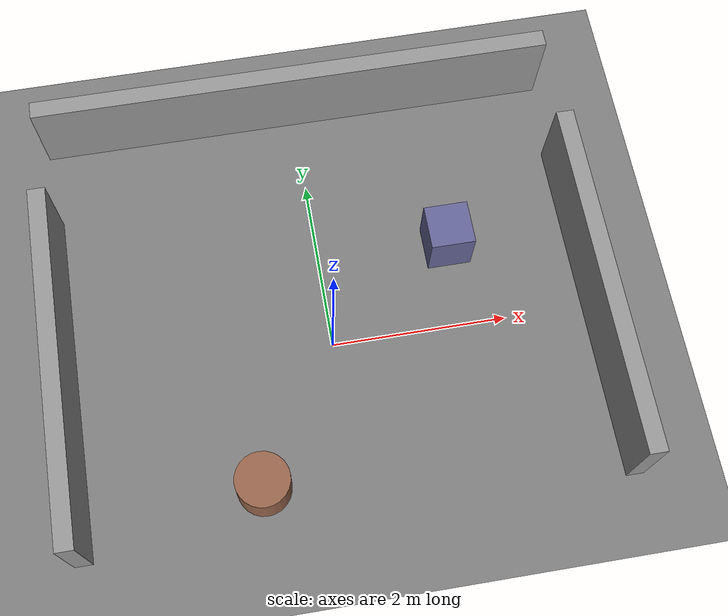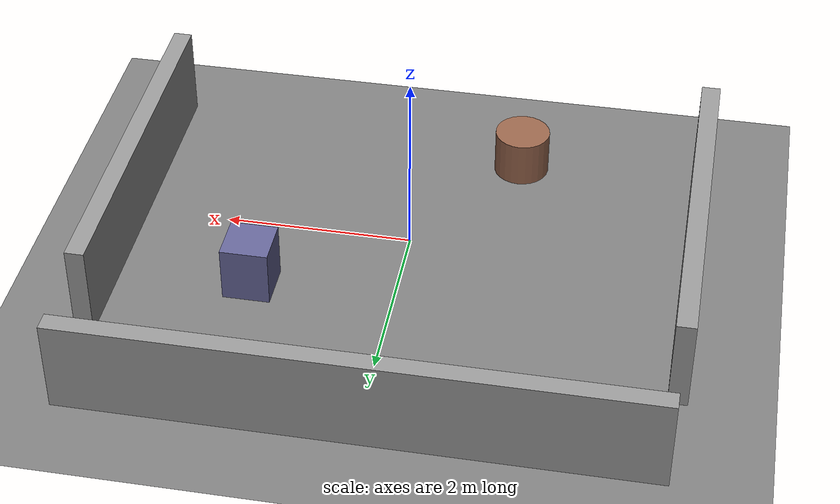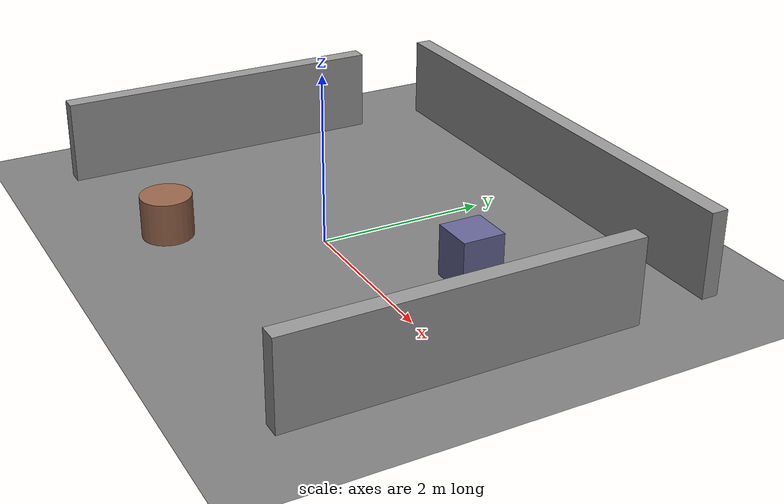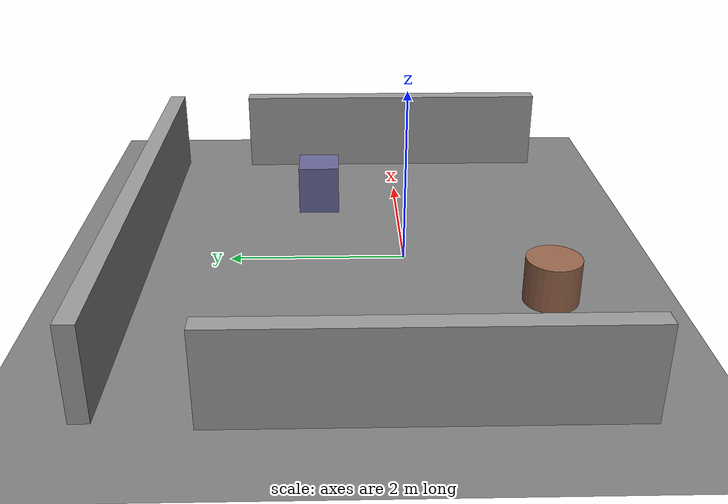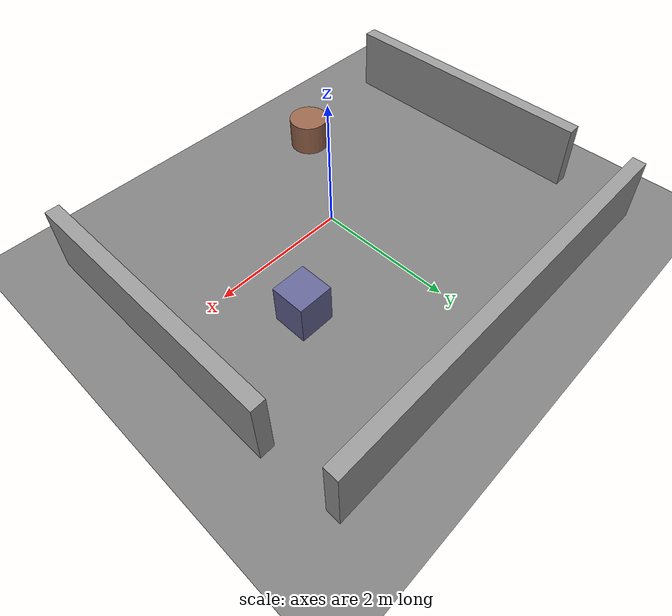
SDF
<?xml version="1.0"?>
<!--
COVEN Test World
A simple environment for testing COVEN protocol with rovers.
-->
<sdf version="1.9">
  <world name="coven_world">

    <!-- Physics -->
    <physics name="1ms" type="ignored">
      <max_step_size>0.001</max_step_size>
      <real_time_factor>1.0</real_time_factor>
    </physics>

    <!-- Plugins -->
    <plugin filename="gz-sim-physics-system" name="gz::sim::systems::Physics"/>
    <plugin filename="gz-sim-user-commands-system" name="gz::sim::systems::UserCommands"/>
    <plugin filename="gz-sim-scene-broadcaster-system" name="gz::sim::systems::SceneBroadcaster"/>
    <plugin filename="gz-sim-sensors-system" name="gz::sim::systems::Sensors">
      <render_engine>ogre2</render_engine>
    </plugin>
    <plugin filename="gz-sim-imu-system" name="gz::sim::systems::Imu"/>
    <plugin filename="gz-sim-contact-system" name="gz::sim::systems::Contact"/>

    <!-- Lighting -->
    <light type="directional" name="sun">
      <cast_shadows>true</cast_shadows>
      <pose>0 0 10 0 0 0</pose>
      <diffuse>0.8 0.8 0.8 1</diffuse>
      <specular>0.2 0.2 0.2 1</specular>
      <direction>-0.5 0.1 -0.9</direction>
    </light>

    <!-- Ground Plane -->
    <model name="ground_plane">
      <static>true</static>
      <link name="link">
        <collision name="collision">
          <geometry>
            <plane>
              <normal>0 0 1</normal>
              <size>50 50</size>
            </plane>
          </geometry>
        </collision>
        <visual name="visual">
          <geometry>
            <plane>
              <normal>0 0 1</normal>
              <size>50 50</size>
            </plane>
          </geometry>
          <material>
            <ambient>0.4 0.4 0.4 1</ambient>
            <diffuse>0.5 0.5 0.5 1</diffuse>
          </material>
        </visual>
      </link>
    </model>

    <!-- Rovers are spawned dynamically via ./coven Runtime options -->

    <!-- Some obstacles for SLAM testing -->
    <model name="wall_1">
      <static>true</static>
      <pose>3 0 0.5 0 0 0</pose>
      <link name="link">
        <collision name="collision">
          <geometry><box><size>0.2 4 1</size></box></geometry>
        </collision>
        <visual name="visual">
          <geometry><box><size>0.2 4 1</size></box></geometry>
          <material>
            <ambient>0.5 0.5 0.5 1</ambient>
            <diffuse>0.6 0.6 0.6 1</diffuse>
          </material>
        </visual>
      </link>
    </model>

    <model name="wall_2">
      <static>true</static>
      <pose>-3 0 0.5 0 0 0</pose>
      <link name="link">
        <collision name="collision">
          <geometry><box><size>0.2 4 1</size></box></geometry>
        </collision>
        <visual name="visual">
          <geometry><box><size>0.2 4 1</size></box></geometry>
          <material>
            <ambient>0.5 0.5 0.5 1</ambient>
            <diffuse>0.6 0.6 0.6 1</diffuse>
          </material>
        </visual>
      </link>
    </model>

    <model name="wall_3">
      <static>true</static>
      <pose>0 3 0.5 0 0 0</pose>
      <link name="link">
        <collision name="collision">
          <geometry><box><size>6 0.2 1</size></box></geometry>
        </collision>
        <visual name="visual">
          <geometry><box><size>6 0.2 1</size></box></geometry>
          <material>
            <ambient>0.5 0.5 0.5 1</ambient>
            <diffuse>0.6 0.6 0.6 1</diffuse>
          </material>
        </visual>
      </link>
    </model>

    <model name="obstacle_1">
      <static>true</static>
      <pose>1.5 1 0.3 0 0 0</pose>
      <link name="link">
        <collision name="collision">
          <geometry><box><size>0.5 0.5 0.6</size></box></geometry>
        </collision>
        <visual name="visual">
          <geometry><box><size>0.5 0.5 0.6</size></box></geometry>
          <material>
            <ambient>0.3 0.3 0.5 1</ambient>
            <diffuse>0.4 0.4 0.6 1</diffuse>
          </material>
        </visual>
      </link>
    </model>

    <model name="obstacle_2">
      <static>true</static>
      <pose>-1 -1.5 0.25 0 0 0</pose>
      <link name="link">
        <collision name="collision">
          <geometry><cylinder><radius>0.3</radius><length>0.5</length></cylinder></geometry>
        </collision>
        <visual name="visual">
          <geometry><cylinder><radius>0.3</radius><length>0.5</length></cylinder></geometry>
          <material>
            <ambient>0.5 0.3 0.2 1</ambient>
            <diffuse>0.6 0.4 0.3 1</diffuse>
          </material>
        </visual>
      </link>
    </model>

  </world>
</sdf>
